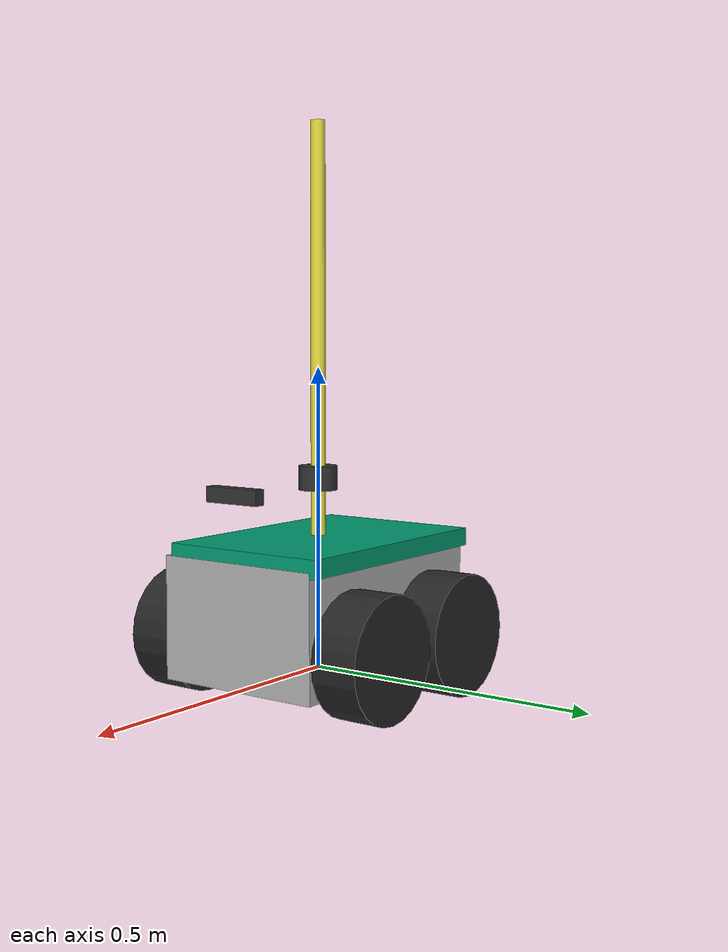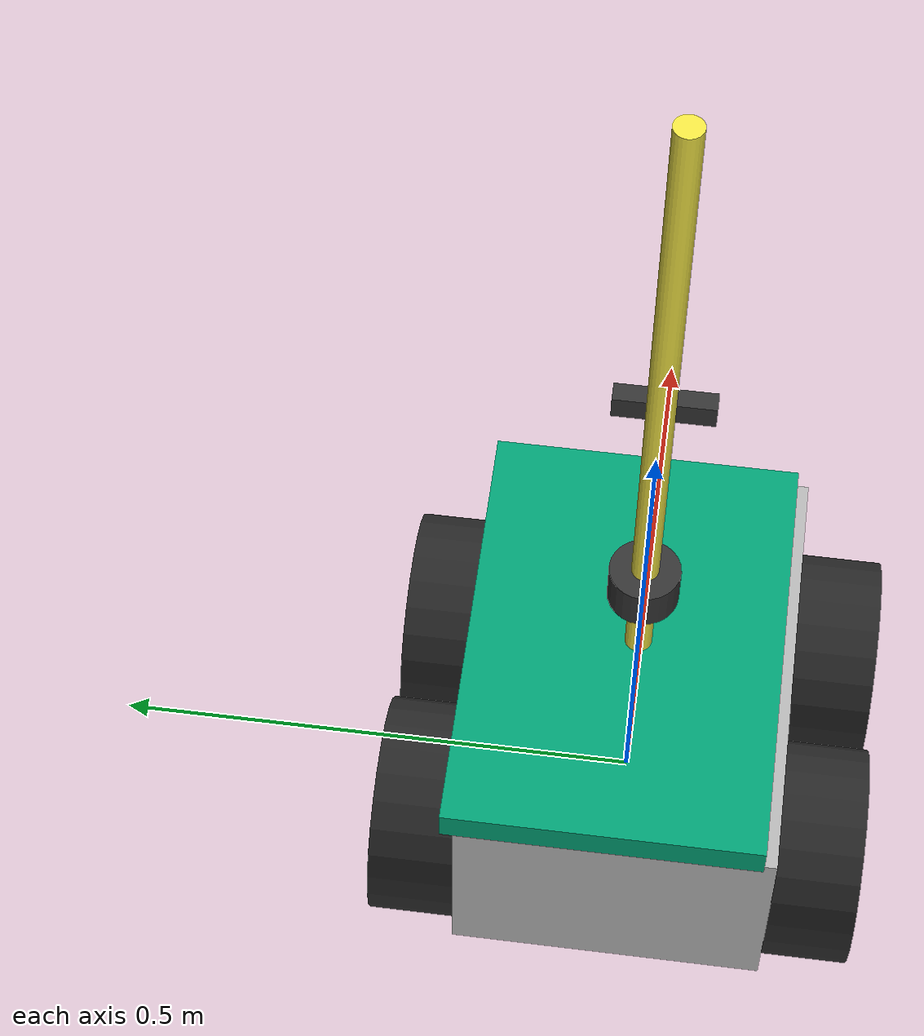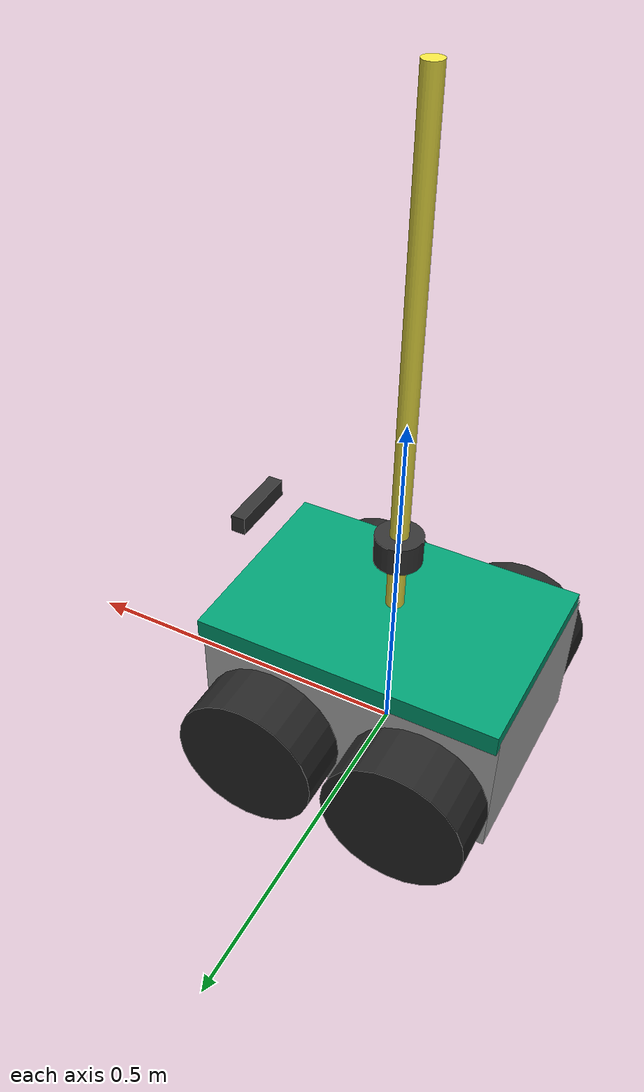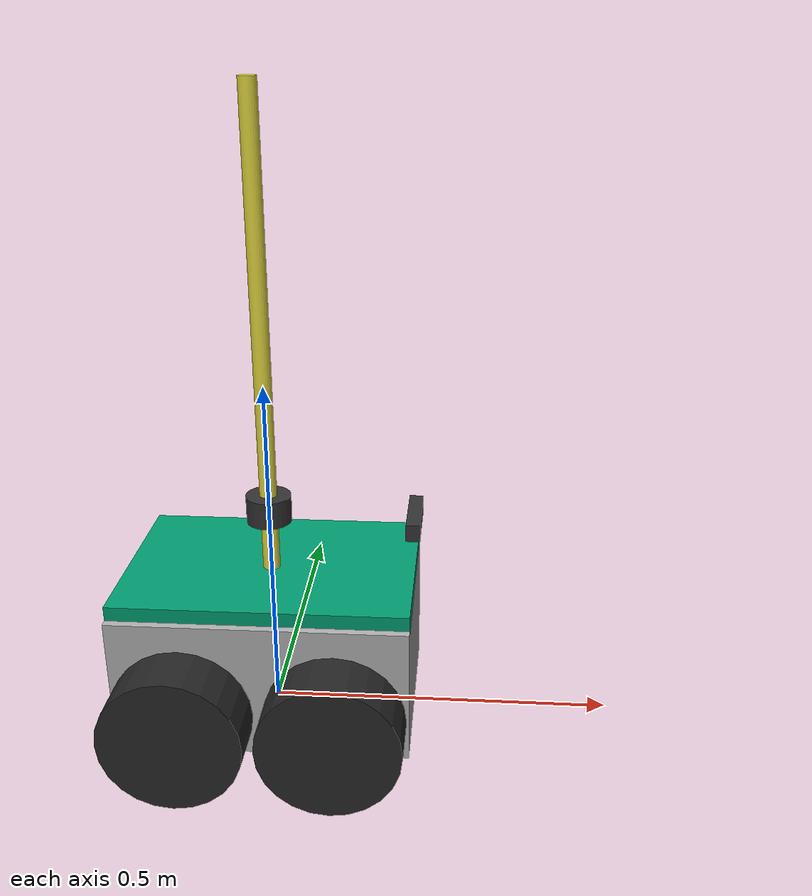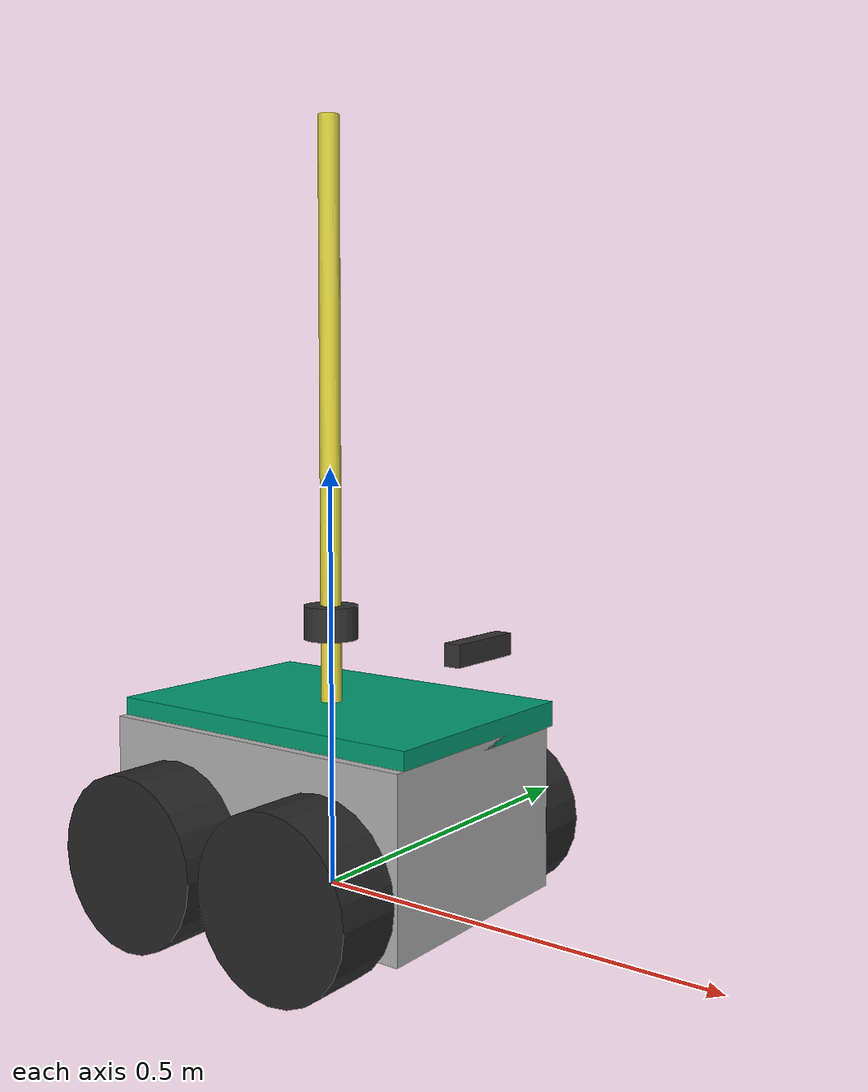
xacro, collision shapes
<?xml version="1.0"?>
<robot xmlns:xacro="http://www.ros.org/wiki/xacro" name="rover">

    <xacro:include filename="$(find prisma_rover_description)/urdf/rover_macro.xacro"/>
    <xacro:include filename="$(find prisma_rover_description)/urdf/utilities.xacro"/>

    <!-- Launch Arguments -->
    <xacro:arg name="namespace" default=""/>
    <xacro:arg name="camera" default="true"/>
    <xacro:arg name="lidar_type" default="3d"/>

    <!-- Base footprint at ground level -->
    <link name="base_footprint"/>

    <!-- Setup structural links and base joint -->
    <xacro:rover_base_frame parent_link="base_footprint"/>

    <!-- Wheels Description (needed for physical visualization via real /joint_states) -->
    <xacro:rover_wheels/>

    <!-- IMU Link and Joint (Hardware config) -->
    <link name="imu_link"/>
    <joint name="imu_to_payload" type="fixed">
        <parent link="base_link"/>
        <child link="imu_link"/>
        <origin xyz="0 0 0" rpy="0 0 0"/>
    </joint>

    <!-- Physical Sensors Configuration -->
    <!-- Conditionally load Lidar type -->
    <xacro:if value="${'$(arg lidar_type)' == '2d'}">
        <xacro:lidar_description laser_frame="laser_link"/>
    </xacro:if>
    <xacro:if value="${'$(arg lidar_type)' == '3d'}">
        <xacro:livox_mid360_description laser_frame="laser_link"/>
    </xacro:if>

    <!-- Conditionally instantiate the camera -->
    <xacro:if value="$(arg camera)">
        <xacro:camera_description/>
    </xacro:if>

</robot>

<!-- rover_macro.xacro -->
<robot xmlns:xacro="http://www.ros.org/wiki/xacro" name="rover_macro">

    <!-- Rover properties -->
    <xacro:property name="track_width" value="0.08"/>
    <xacro:property name="total_width" value="0.4515"/>
    <xacro:property name="total_length" value="0.422"/>
    <xacro:property name="total_height" value="0.202"/>
    <xacro:property name="chassis_width" value="0.241"/>
    <xacro:property name="chassis_height" value="0.0785"/>
    <xacro:property name="chassis_length" value="0.320"/>
    <xacro:property name="track_distance" value="0.2915"/>
    <xacro:property name="wheel_axes_distance" value="0.220"/>
    <xacro:property name="wheel_collision_x" value="${total_length/2 - total_height/2 - 0.001}"/>
    <xacro:property name="wheel_collision_y" value="${track_width}"/>
    <xacro:property name="wheel_collision_z" value="${total_height - 0.02}"/>
    <xacro:property name="rover_z_elev" value="${total_height/2 - chassis_height/2}"/>
    <xacro:property name="collision_z_elev" value="${chassis_height/2}"/>

    <!-- Robot Parameters -->
    <xacro:property name="wheel_z_offset" value="0.020" />
    <xacro:property name="wheel_x_offset" value="${wheel_axes_distance/2}" />
    <xacro:property name="front_flipper_x_offset" value="-0.0035" />
    <xacro:property name="wheel_y_offset" value="${(total_width-track_width)/2}" />
    <xacro:property name="track_y_offset" value="0.11" />
    <xacro:property name="wheel_mass" value="1.25" />
    <xacro:property name="payload_z_offset" value="0.096" />

    <xacro:macro name="rover_base_frame" params="parent_link">
        <joint name="world_base_joint" type="fixed">
            <parent link="${parent_link}"/>
            <child link="base_link"/>
            <origin xyz="0.0 0.0 ${rover_z_elev}" rpy="0.0 0.0 0.0"/>
        </joint>

        <link name="base_link">
            <visual>
                <origin xyz="0 0 -0.035" rpy="0 0 0"/>
                <geometry>
                    <mesh filename="file://$(find prisma_rover_description)/meshes/prisma_rover.obj" scale="0.001 0.001 0.001"/>
                </geometry>
                <material name="silver">
                    <color rgba="0.7 0.7 0.7 1.0"/>
                </material>
            </visual>
            <inertial>
                <origin xyz="0.0 0.0 0.0" rpy="0.0 0.0 0.0"/>
                <mass value="10.0"/>
                <xacro:box_inertia m="10.0" x="${total_length}" y="${total_width}" z="${total_height}"/>
            </inertial>
            <collision>
                <origin xyz="0.0 0.0 ${collision_z_elev}" rpy="0.0 0.0 0.0"/>
                <geometry>
                    <box size="${total_length} ${total_width - 2*track_width} ${total_height - 0.0005}"/>
                </geometry>
            </collision>
        </link>

        <link name="payload_link">
            <collision>
                <origin xyz="0 0.0115 0.05" rpy="0 0 0" />
                <geometry>
                    <box size="${total_length} ${total_width - 2*track_width} 0.03"/>
                </geometry>
            </collision>
            <inertial>
                <origin xyz="-0.01 0 0" rpy="0 0 0"/>
                <mass value="2.95" />
                <inertia ixx="0.018398" ixy="0.0" ixz="0.0" iyy="0.04064" iyz="0.0" izz="0.05396" />
            </inertial>
        </link>

        <joint name="payload_to_base" type="fixed">
            <parent link="base_link"/>
            <child link="payload_link"/>
            <origin xyz="0 0 ${payload_z_offset}"/>
        </joint>

        <link name="pole_link">
            <collision>
                <origin xyz="0.0 0.0 0.0" rpy="0 0 0"/>
                <geometry>
                    <cylinder radius="0.0125" length="${1.1-2*total_height}"/>
                </geometry>
            </collision>
        </link>

        <joint name="pole_to_payload" type="fixed">
            <origin xyz="0 0 ${0.5 - total_height/2}" rpy="0 0 0"/>
            <parent link="payload_link"/>
            <child link="pole_link"/>
        </joint>
    </xacro:macro>

    <!-- Wheels Description (needed for physical visualization via real /joint_states) -->
    <xacro:macro name="rover_wheels">
        <!-- Front Right Wheel -->
        <link name="fr_wheel_link">
            <visual>
                <origin xyz="0 0 0" rpy="-1.57 0 0" />
                <geometry>
                    <mesh filename="file://$(find prisma_rover_description)/meshes/pro_tire.obj" scale="0.5 0.5 1.0"/>
                </geometry>
                <material name="dark_grey">
                    <color rgba="0.15 0.15 0.15 1.0"/>
                </material>
            </visual>
            <collision>
                <origin xyz="0 0 0" rpy="-1.57 0 0" />
                <geometry>
                    <cylinder radius="${total_height/2}" length="${track_width}"/>
                </geometry>
            </collision>
            <inertial>
                <origin xyz="0 0 0" rpy="0 0 0" />
                <mass value="${wheel_mass}" />
                <inertia ixx="0.005645" ixy="0.0" ixz="0.0" iyy="0.01008" iyz="0.0" izz="0.005645"/>
            </inertial>
        </link>

        <joint name="fr_wheel_to_base" type="continuous">
            <parent link="base_link"/>
            <child link="fr_wheel_link"/>
            <axis xyz="0 1 0"/>
            <origin xyz="${wheel_x_offset + front_flipper_x_offset} ${-wheel_y_offset} 0" rpy="0 0 0"/>
        </joint>

        <!-- Front Left Wheel -->
        <link name="fl_wheel_link">
            <visual>
                <origin xyz="0 0 0" rpy="1.57 0 0" />
                <geometry>
                    <mesh filename="file://$(find prisma_rover_description)/meshes/pro_tire.obj" scale="0.5 0.5 1.0"/>
                </geometry>
                <material name="dark_grey">
                    <color rgba="0.15 0.15 0.15 1.0"/>
                </material>
            </visual>
            <collision>
                <origin xyz="0 0 0" rpy="1.57 0 0" />
                <geometry>
                    <cylinder radius="${total_height/2}" length="${track_width}"/>
                </geometry>
            </collision>
            <inertial>
                <origin xyz="0 0 0" rpy="0 0 0" />
                <mass value="${wheel_mass}" />
                <inertia ixx="0.005645" ixy="0.0" ixz="0.0" iyy="0.01008" iyz="0.0" izz="0.005645"/>
            </inertial>
        </link>

        <joint name="fl_wheel_to_base" type="continuous">
            <parent link="base_link"/>
            <child link="fl_wheel_link"/>
            <axis xyz="0 1 0"/>
            <origin xyz="${wheel_x_offset + front_flipper_x_offset} ${wheel_y_offset} 0" rpy="0 0 0"/>
        </joint>

        <!-- Rear Right Wheel -->
        <link name="rr_wheel_link">
            <visual>
                <origin xyz="0 0 0" rpy="1.57 0 3.1415" />
                <geometry>
                    <mesh filename="file://$(find prisma_rover_description)/meshes/pro_tire.obj" scale="0.5 0.5 1.0"/>
                </geometry>
                <material name="dark_grey">
                    <color rgba="0.15 0.15 0.15 1.0"/>
                </material>
            </visual>
            <collision>
                <origin xyz="0 0 0" rpy="1.57 0 3.1415" />
                <geometry>
                    <cylinder radius="${total_height/2}" length="${track_width}"/>
                </geometry>
            </collision>
            <inertial>
                <origin xyz="0 0 0" rpy="0 0 0" />
                <mass value="${wheel_mass}" />
                <inertia ixx="0.005645" ixy="0.0" ixz="0.0" iyy="0.01008" iyz="0.0" izz="0.005645"/>
            </inertial>
        </link>

        <joint name="rr_wheel_to_base" type="continuous">
            <parent link="base_link"/>
            <child link="rr_wheel_link"/>
            <axis xyz="0 1 0"/>
            <origin xyz="${-wheel_x_offset} ${-wheel_y_offset} 0" rpy="0 0 0"/>
        </joint>

        <!-- Rear Left Wheel -->
        <link name="rl_wheel_link">
            <visual>
                <origin xyz="0 0 0" rpy="-1.57 0 3.1415" />
                <geometry>
                    <mesh filename="file://$(find prisma_rover_description)/meshes/pro_tire.obj" scale="0.5 0.5 1.0"/>
                </geometry>
                <material name="dark_grey">
                    <color rgba="0.15 0.15 0.15 1.0"/>
                </material>
            </visual>
            <collision>
                <origin xyz="0 0 0" rpy="-1.57 0 3.1415" />
                <geometry>
                    <cylinder radius="${total_height/2}" length="${track_width}"/>
                </geometry>
            </collision>
            <inertial>
                <origin xyz="0 0 0" rpy="0 0 0" />
                <mass value="${wheel_mass}" />
                <inertia ixx="0.005645" ixy="0.0" ixz="0.0" iyy="0.01008" iyz="0.0" izz="0.005645"/>
            </inertial>
        </link>

        <joint name="rl_wheel_to_base" type="continuous">
            <parent link="base_link"/>
            <child link="rl_wheel_link"/>
            <axis xyz="0 1 0"/>
            <origin xyz="${-wheel_x_offset} ${wheel_y_offset} 0" rpy="0 0 0"/>
        </joint>
    </xacro:macro>

    <!-- IMU Description -->
    <xacro:macro name="imu_description">
        <link name="imu_link"/>
        <joint name="imu_to_payload" type="fixed">
            <parent link="base_link"/>
            <child link="imu_link"/>
            <origin xyz="0 0 0" rpy="0 0 0"/>
        </joint>
    </xacro:macro>

    <!-- RealSense RGB-D Camera Description -->
    <xacro:macro name="camera_description">
        <joint name="camera_to_payload" type="fixed">
            <origin xyz="0.22 0.0 0.15" rpy="0 0 0"/>
            <parent link="payload_link"/>
            <child link="camera_link"/>
        </joint>

        <link name="camera_link">
            <visual>
                <origin xyz="0 0 0" rpy="1.57 0 1.57"/>
                <geometry>
                    <mesh filename="file://$(find prisma_rover_description)/meshes/realsense.obj"/>
                </geometry>
                <material name="camera_black">
                    <color rgba="0.2 0.2 0.2 1.0"/>
                </material>
            </visual>
            <collision>
                <origin xyz="-0.01 0.0 0.0" rpy="0 0 0"/>
                <geometry>
                    <box size="0.02 0.1 0.025"/>
                </geometry>
            </collision>
        </link>

        <joint name="camera_rgb_joint" type="fixed">
            <origin xyz="0.005 0.018 0.013" rpy="0 0 0"/>
            <parent link="camera_link"/>
            <child link="camera_rgb_frame"/>
        </joint>
        <link name="camera_rgb_frame"/>

        <joint name="camera_rgb_optical_joint" type="fixed">
            <origin xyz="0 0 0" rpy="-1.57 0 -1.57"/>
            <parent link="camera_rgb_frame"/>
            <child link="camera_rgb_optical_frame"/>
        </joint>
        <link name="camera_rgb_optical_frame"/>

        <joint name="camera_depth_joint" type="fixed">
            <origin xyz="0.005 0.028 0.013" rpy="0 0 0"/>
            <parent link="camera_link"/>
            <child link="camera_depth_frame"/>
        </joint>
        <link name="camera_depth_frame"/>

        <joint name="camera_depth_optical_joint" type="fixed">
            <origin xyz="0 0 0" rpy="-1.57 0 -1.57"/>
            <parent link="camera_depth_frame"/>
            <child link="camera_depth_optical_frame"/>
        </joint>
        <link name="camera_depth_optical_frame"/>
    </xacro:macro>

    <!-- 2D RPLidar Lidar Description -->
    <xacro:macro name="lidar_description" params="laser_frame">
        <joint name="lidar_to_payload" type="fixed">
            <parent link="payload_link"/>
            <child link="${laser_frame}"/>
            <origin xyz="0.0 0.0 0.16" rpy="0.0 0.0 0.0"/>
        </joint>

        <link name="${laser_frame}">
            <visual>
                <origin xyz="0 0 0" rpy="-1.57 3.1415 3.1415"/>
                <geometry>
                    <mesh filename="file://$(find prisma_rover_description)/meshes/rplidar_s2.obj"/>
                </geometry>
                <material name="lidar_red">
                    <color rgba="0.8 0.2 0.2 1.0"/>
                </material>
            </visual>
            <collision>
                <origin xyz="0 0 -0.05" rpy="0 0 3.1415"/>
                <geometry>
                    <cylinder radius="0.05" length="0.15"/>
                </geometry>
            </collision>
        </link>
    </xacro:macro>

    <!-- 3D Livox Mid-360 Lidar Description -->
    <xacro:macro name="livox_mid360_description" params="laser_frame">
        <joint name="livox_to_payload" type="fixed">
            <parent link="payload_link"/>
            <child link="${laser_frame}"/>
            <origin xyz="0.0 0.0 0.16" rpy="0.0 0.0 0.0"/>
        </joint>

        <link name="${laser_frame}">
            <visual>
                <origin xyz="0 0 0" rpy="0 0 0"/>
                <geometry>
                    <cylinder radius="0.0325" length="0.04"/>
                </geometry>
                <material name="dark_grey">
                    <color rgba="0.2 0.2 0.2 1.0"/>
                </material>
            </visual>
            <collision>
                <origin xyz="0 0 0" rpy="0 0 0"/>
                <geometry>
                    <cylinder radius="0.0325" length="0.04"/>
                </geometry>
            </collision>
        </link>
    </xacro:macro>

</robot>

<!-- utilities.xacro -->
<robot xmlns:xacro="http://www.ros.org/wiki/xacro" name="utilities">

    <xacro:property name="PI" value="3.1415926535"/>
    <xacro:property name="HALF_PI" value="1.5707963268"/>

    <xacro:macro name="cylinder_inertia" params="radius length mass">
        <inertia ixx="${mass * (3 * radius * radius + length * length) / 12}"
                 iyy="${mass * radius * radius / 2}"
                 izz="${mass * (3 * radius * radius + length * length) / 12}"
                 ixy="0" iyz="0" ixz="0"/>
    </xacro:macro>

    <xacro:macro name="sphere_inertia" params="radius mass">
        <inertia ixx="${2/5 * mass * radius * radius}"
                 iyy="${2/5 * mass * radius * radius}"
                 izz="${2/5 * mass * radius * radius}"
                 ixy="0" iyz="0" ixz="0"/>
    </xacro:macro>

    <xacro:macro name="box_inertia" params="m x y z">
        <inertia ixx="${m * (y*y + z*z) / 12}" ixy="0" ixz="0"
                 iyy="${m * (x*x + z*z) / 12}" iyz="0"
                 izz="${m * (x*x + z*z) / 12}" />
    </xacro:macro>

</robot>
